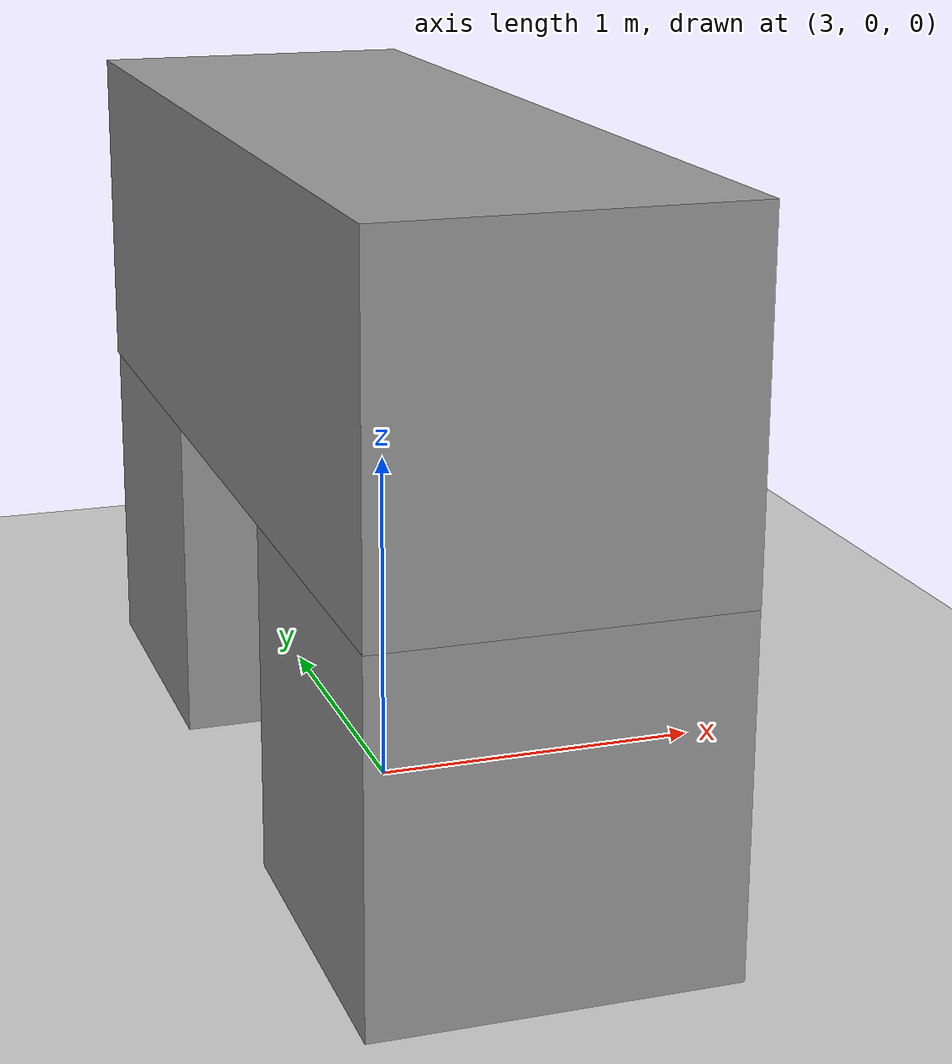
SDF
<sdf version="1.7">
 <world name="default">
  <light name="sun" type="directional">
   <pose>0 0 10 0 -0 0</pose>
   <diffuse>0.8 0.8 0.8 1</diffuse>
   <specular>0.2 0.2 0.2 1</specular>
   <attenuation>
    <range>1000</range>
    <constant>0.9</constant>
    <linear>0.01</linear>
    <quadratic>0.001</quadratic>
   </attenuation>
   <direction>-0.5 0.1 -0.9</direction>
   <spot><inner_angle>0</inner_angle><outer_angle>0</outer_angle><falloff>0</falloff></spot>
  </light>
  <model name="ground_plane">
   <static>1</static>
   <link name="link">
    <collision name="collision">
     <geometry><plane><normal>0 0 1</normal><size>100 100</size></plane></geometry>
     <surface><friction><ode><mu>100</mu><mu2>50</mu2></ode></friction></surface>
    </collision>
    <visual name="visual">
     <cast_shadows>0</cast_shadows>
     <geometry><plane><normal>0 0 1</normal><size>100 100</size></plane></geometry>
     <material>
      <script><uri>file://media/materials/scripts/gazebo.material</uri><name>Gazebo/Grey</name></script>
     </material>
    </visual>
   </link>
  </model>
  <gravity>0 0 -9.8</gravity>
  <magnetic_field>6e-06 2.3e-05 -4.2e-05</magnetic_field>
  <atmosphere type="adiabatic"/>
  <physics type="ode">
   <max_step_size>0.001</max_step_size>
   <real_time_factor>1</real_time_factor>
   <real_time_update_rate>1000</real_time_update_rate>
  </physics>
  <scene><ambient>0.4 0.4 0.4 1</ambient><background>0.7 0.7 0.7 1</background><shadows>1</shadows></scene>
  <spherical_coordinates>
   <surface_model>EARTH_WGS84</surface_model>
   <latitude_deg>0</latitude_deg>
   <longitude_deg>0</longitude_deg>
   <elevation>0</elevation>
   <heading_deg>0</heading_deg>
  </spherical_coordinates>
  <model name="Bridge_0">
   <link name="link_0">
    <inertial>
     <mass>0.999216</mass>
     <inertia>
      <ixx>0.166536</ixx>
      <ixy>0</ixy>
      <ixz>0</ixz>
      <iyy>0.166536</iyy>
      <iyz>0</iyz>
      <izz>0.166536</izz>
     </inertia>
    </inertial>
    <pose>0.004074 1.00144 -0.333333 0 -0 0</pose>
    <visual name="visual">
     <geometry><box><size>0.999999 1 1</size></box></geometry>
     <material>
      <lighting>1</lighting>
      <script><uri>file://media/materials/scripts/gazebo.material</uri><name>Gazebo/Grey</name></script>
      <shader type="pixel"><normal_map>__default__</normal_map></shader>
      <ambient>0.3 0.3 0.3 1</ambient>
      <diffuse>0.7 0.7 0.7 1</diffuse>
      <specular>0.01 0.01 0.01 1</specular>
      <emissive>0 0 0 1</emissive>
     </material>
    </visual>
    <collision name="collision">
     <geometry><box><size>1 1 1</size></box></geometry>
     <surface>
      <friction>
       <ode><mu>1</mu><mu2>1</mu2><fdir1>0 0 0</fdir1><slip1>0</slip1><slip2>0</slip2></ode>
       <torsional>
        <coefficient>1</coefficient>
        <patch_radius>0</patch_radius>
        <surface_radius>0</surface_radius>
        <use_patch_radius>1</use_patch_radius>
        <ode><slip>0</slip></ode>
       </torsional>
      </friction>
      <bounce><restitution_coefficient>0</restitution_coefficient><threshold>1e+06</threshold></bounce>
      <contact>
       <collide_without_contact>0</collide_without_contact>
       <collide_without_contact_bitmask>1</collide_without_contact_bitmask>
       <collide_bitmask>1</collide_bitmask>
       <ode>
        <soft_cfm>0</soft_cfm>
        <soft_erp>0.2</soft_erp>
        <kp>1e+13</kp>
        <kd>1</kd>
        <max_vel>0.01</max_vel>
        <min_depth>0</min_depth>
       </ode>
       <bullet>
        <split_impulse>1</split_impulse>
        <split_impulse_penetration_threshold>-0.01</split_impulse_penetration_threshold>
        <soft_cfm>0</soft_cfm>
        <soft_erp>0.2</soft_erp>
        <kp>1e+13</kp>
        <kd>1</kd>
       </bullet>
      </contact>
     </surface>
    </collision>
   </link>
   <link name="link_0_clone">
    <inertial>
     <mass>0.999216</mass>
     <inertia>
      <ixx>0.166536</ixx>
      <ixy>0</ixy>
      <ixz>0</ixz>
      <iyy>0.166536</iyy>
      <iyz>0</iyz>
      <izz>0.166536</izz>
     </inertia>
    </inertial>
    <pose>-0.002037 -1.00072 -0.333333 0 -0 0</pose>
    <visual name="visual">
     <geometry><box><size>0.999999 1 1</size></box></geometry>
     <material>
      <lighting>1</lighting>
      <script><uri>file://media/materials/scripts/gazebo.material</uri><name>Gazebo/Grey</name></script>
      <shader type="pixel"><normal_map>__default__</normal_map></shader>
      <ambient>0.3 0.3 0.3 1</ambient>
      <diffuse>0.7 0.7 0.7 1</diffuse>
      <specular>0.01 0.01 0.01 1</specular>
      <emissive>0 0 0 1</emissive>
     </material>
    </visual>
    <collision name="collision">
     <geometry><box><size>1 1 1</size></box></geometry>
     <surface>
      <friction>
       <ode><mu>1</mu><mu2>1</mu2><fdir1>0 0 0</fdir1><slip1>0</slip1><slip2>0</slip2></ode>
       <torsional>
        <coefficient>1</coefficient>
        <patch_radius>0</patch_radius>
        <surface_radius>0</surface_radius>
        <use_patch_radius>1</use_patch_radius>
        <ode><slip>0</slip></ode>
       </torsional>
      </friction>
      <bounce><restitution_coefficient>0</restitution_coefficient><threshold>1e+06</threshold></bounce>
      <contact>
       <collide_without_contact>0</collide_without_contact>
       <collide_without_contact_bitmask>1</collide_without_contact_bitmask>
       <collide_bitmask>1</collide_bitmask>
       <ode>
        <soft_cfm>0</soft_cfm>
        <soft_erp>0.2</soft_erp>
        <kp>1e+13</kp>
        <kd>1</kd>
        <max_vel>0.01</max_vel>
        <min_depth>0</min_depth>
       </ode>
       <bullet>
        <split_impulse>1</split_impulse>
        <split_impulse_penetration_threshold>-0.01</split_impulse_penetration_threshold>
        <soft_cfm>0</soft_cfm>
        <soft_erp>0.2</soft_erp>
        <kp>1e+13</kp>
        <kd>1</kd>
       </bullet>
      </contact>
     </surface>
    </collision>
   </link>
   <link name="link_0_clone_clone">
    <inertial>
     <mass>3.00041</mass>
     <inertia><ixx>2.50448</ixx><ixy>0</ixy><ixz>0</ixz><iyy>0.500069</iyy><iyz>0</iyz><izz>2.50448</izz></inertia>
    </inertial>
    <pose>-0.002037 -0.000717 0.666667 0 -0 0</pose>
    <visual name="visual">
     <geometry><box><size>0.999999 3.00276 1</size></box></geometry>
     <material>
      <lighting>1</lighting>
      <script><uri>file://media/materials/scripts/gazebo.material</uri><name>Gazebo/Grey</name></script>
      <shader type="pixel"><normal_map>__default__</normal_map></shader>
      <ambient>0.3 0.3 0.3 1</ambient>
      <diffuse>0.7 0.7 0.7 1</diffuse>
      <specular>0.01 0.01 0.01 1</specular>
      <emissive>0 0 0 1</emissive>
     </material>
    </visual>
    <collision name="collision">
     <geometry><box><size>1 3.00276 1</size></box></geometry>
     <surface>
      <friction>
       <ode><mu>1</mu><mu2>1</mu2><fdir1>0 0 0</fdir1><slip1>0</slip1><slip2>0</slip2></ode>
       <torsional>
        <coefficient>1</coefficient>
        <patch_radius>0</patch_radius>
        <surface_radius>0</surface_radius>
        <use_patch_radius>1</use_patch_radius>
        <ode><slip>0</slip></ode>
       </torsional>
      </friction>
      <bounce><restitution_coefficient>0</restitution_coefficient><threshold>1e+06</threshold></bounce>
      <contact>
       <collide_without_contact>0</collide_without_contact>
       <collide_without_contact_bitmask>1</collide_without_contact_bitmask>
       <collide_bitmask>1</collide_bitmask>
       <ode>
        <soft_cfm>0</soft_cfm>
        <soft_erp>0.2</soft_erp>
        <kp>1e+13</kp>
        <kd>1</kd>
        <max_vel>0.01</max_vel>
        <min_depth>0</min_depth>
       </ode>
       <bullet>
        <split_impulse>1</split_impulse>
        <split_impulse_penetration_threshold>-0.01</split_impulse_penetration_threshold>
        <soft_cfm>0</soft_cfm>
        <soft_erp>0.2</soft_erp>
        <kp>1e+13</kp>
        <kd>1</kd>
       </bullet>
      </contact>
     </surface>
    </collision>
   </link>
   <static>0</static>
   <pose>3.00204 0.000717 0.833333 0 -0 0</pose>
  </model>
 </world>
</sdf>
